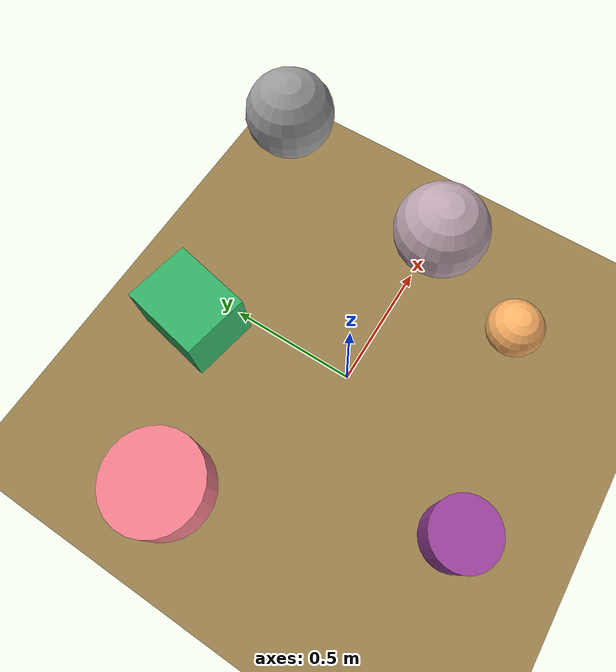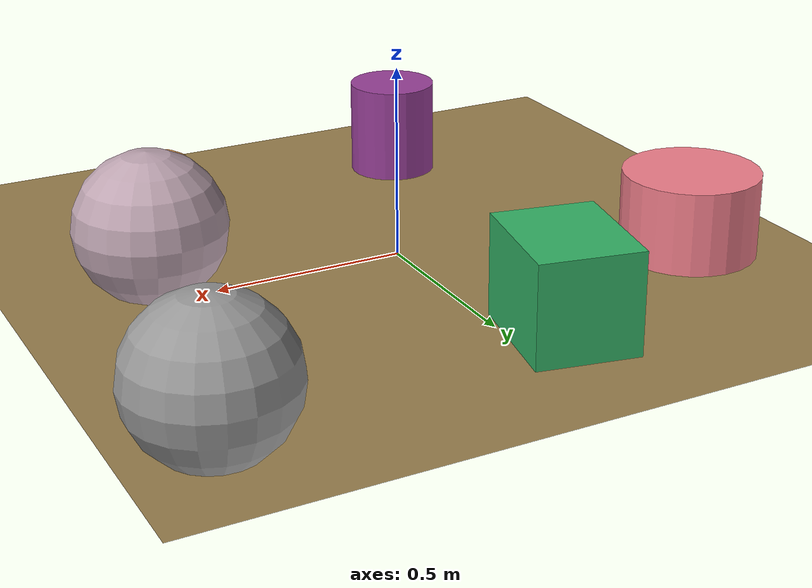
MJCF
<mujoco>
   <asset>
<texture type="skybox" builtin="gradient" rgb1="0.4 0.3 0.1" rgb2="1.0 0.4 0.3" width="256" height="256"/>
<texture name="checker_0" builtin="checker" rgb1="0.9 0.6 0.2" rgb2="1.0 0.4 0.9" width="200" height="200"/>
<texture name="checker_1" builtin="checker" rgb1="0.3 0.2 0.4" rgb2="0.9 0.3 0.8" width="200" height="200"/>
<texture name="checker_2" builtin="checker" rgb1="0.2 0.3 0.3" rgb2="1.0 0.9 0.9" width="200" height="200"/>
<texture name="flat_3" builtin="flat" rgb1="0.2 0.7 0.4" rgb2="0.2 0.7 0.4"  width="200" height="200"/>
<texture name="checker_4" builtin="checker" rgb1="1.0 0.9 0.8" rgb2="0.5 0.4 0.6" width="200" height="200"/>
<texture name="flat_5" builtin="flat" rgb1="1.0 0.7 0.4" rgb2="1.0 0.7 0.4"  width="200" height="200"/><material name="checker_0_mat" reflectance="0" texrepeat="9 9" texture="checker_0" texuniform="false" />
<material name="checker_1_mat" reflectance="0" texrepeat="8 8" texture="checker_1" texuniform="false" />
<material name="checker_2_mat" reflectance="0" texrepeat="8 8" texture="checker_2" texuniform="false" />
<material name="flat_3_mat" reflectance="0" texture="flat_3" texuniform="true"/>
<material name="checker_4_mat" reflectance="0" texrepeat="3 3" texture="checker_4" texuniform="false" />
<material name="flat_5_mat" reflectance="0" texture="flat_5" texuniform="true"/>
   </asset>

   <worldbody>
      <light diffuse=".9 .9 .9" pos="0 0 3" dir="0 0 -1"/>
     <geom type="plane" size="1 1 0.1" rgba="0.6 0.5 0.3 1"/>
<geom type="cylinder" pos="-0.68 0.33 0.11" size="0.18 0.11 0.11" material="checker_0_mat" euler="0 0 71" />
<geom type="cylinder" pos="-0.29 -0.6 0.13" size="0.12 0.13 0.13" material="checker_1_mat" euler="0 0 68" />
<geom type="sphere" pos="0.81 0.78 0.19" size="0.19 0.19 0.19" material="checker_2_mat" euler="0 0 6" />
<geom type="box" pos="-0.12 0.61 0.13" size="0.16 0.13 0.13" material="flat_3_mat" euler="0 0 79" />
<geom type="sphere" pos="0.65 -0.03 0.19" size="0.19 0.19 0.19" material="checker_4_mat" euler="0 0 3" />
<geom type="sphere" pos="0.47 -0.45 0.11" size="0.11 0.11 0.11" material="flat_5_mat" euler="0 0 9" /><camera euler="60 0 180" fovy="60" name="camera1" pos="-0.2 -1.5 1"></camera>   </worldbody>
</mujoco>
